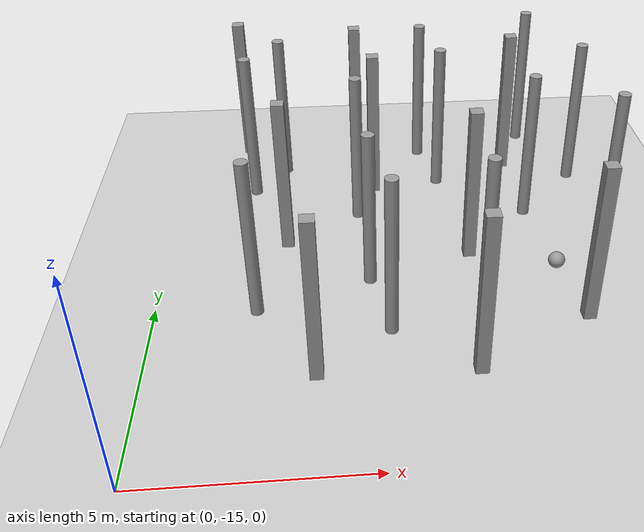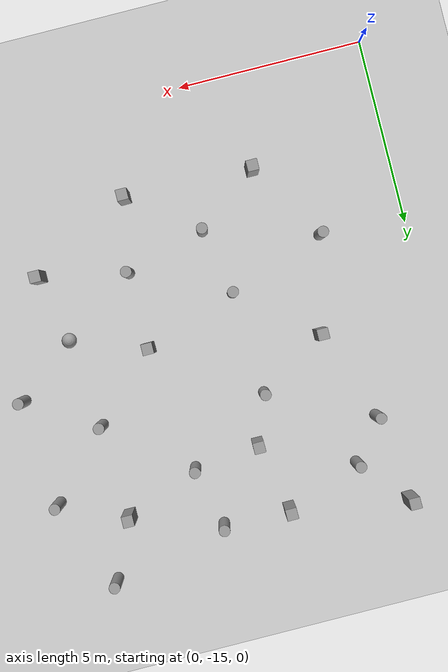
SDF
<sdf version="1.6">
 <world name="default">
  <model name="ground_plane">
   <static>1</static>
   <link name="link">
    <collision name="collision">
     <geometry><plane><normal>0 0 1</normal><size>100 100</size></plane></geometry>
    </collision>
    <visual name="visual">
     <cast_shadows>0</cast_shadows>
     <geometry><plane><normal>0 0 1</normal><size>100 100</size></plane></geometry>
     <material>
      <script><uri>file://media/materials/scripts/gazebo.material</uri><name>Gazebo/Gray</name></script>
     </material>
    </visual>
   </link>
  </model>
  <model name="unit_sphere">
   <link name="link">
    <inertial>
     <mass>1</mass>
     <inertia><ixx>0.1</ixx><ixy>0</ixy><ixz>0</ixz><iyy>0.1</iyy><iyz>0</iyz><izz>0.1</izz></inertia>
    </inertial>
    <gravity>0</gravity>
    <visual name="visual">
     <geometry><sphere><radius>0.203941</radius></sphere></geometry>
     <material>
      <script><name>Gazebo/Grey</name><uri>file://media/materials/scripts/gazebo.material</uri></script>
      <shader type="pixel"><normal_map>__default__</normal_map></shader>
     </material>
    </visual>
    <collision name="collision">
     <geometry><sphere><radius>0.203941</radius></sphere></geometry>
     <surface>
      <friction>
       <ode><mu>1</mu><mu2>1</mu2><fdir1>0 0 0</fdir1><slip1>0</slip1><slip2>0</slip2></ode>
       <torsional>
        <coefficient>1</coefficient>
        <patch_radius>0</patch_radius>
        <surface_radius>0</surface_radius>
        <use_patch_radius>1</use_patch_radius>
        <ode><slip>0</slip></ode>
       </torsional>
      </friction>
      <bounce><restitution_coefficient>0</restitution_coefficient><threshold>1e+06</threshold></bounce>
      <contact>
       <collide_without_contact>0</collide_without_contact>
       <collide_without_contact_bitmask>1</collide_without_contact_bitmask>
       <collide_bitmask>1</collide_bitmask>
       <ode>
        <soft_cfm>0</soft_cfm>
        <soft_erp>0.2</soft_erp>
        <kp>1e+13</kp>
        <kd>1</kd>
        <max_vel>0.01</max_vel>
        <min_depth>0</min_depth>
       </ode>
       <bullet>
        <split_impulse>1</split_impulse>
        <split_impulse_penetration_threshold>-0.01</split_impulse_penetration_threshold>
        <soft_cfm>0</soft_cfm>
        <soft_erp>0.2</soft_erp>
        <kp>1e+13</kp>
        <kd>1</kd>
       </bullet>
      </contact>
     </surface>
    </collision>
   </link>
   <static>0</static>
   <pose>9.54607 -9.14462 0.203941 0 -0 0</pose>
  </model>
  <model name="unit_box_clone_2">
   <link name="link">
    <inertial>
     <mass>1000</mass>
     <inertia><ixx>166.667</ixx><ixy>0</ixy><ixz>0</ixz><iyy>166.667</iyy><iyz>0</iyz><izz>166.667</izz></inertia>
    </inertial>
    <visual name="visual">
     <geometry><box><size>0.3 0.3 4</size></box></geometry>
     <material>
      <script><name>Gazebo/Grey</name><uri>file://media/materials/scripts/gazebo.material</uri></script>
      <shader type="vertex"><normal_map>__default__</normal_map></shader>
      <ambient>0.3 0.3 0.3 1</ambient>
      <diffuse>0.7 0.7 0.7 1</diffuse>
      <specular>0.01 0.01 0.01 1</specular>
      <emissive>0 0 0 1</emissive>
     </material>
    </visual>
    <collision name="collision">
     <geometry><box><size>0.3 0.3 4</size></box></geometry>
     <surface>
      <friction>
       <ode><mu>1</mu><mu2>1</mu2><fdir1>0 0 0</fdir1><slip1>0</slip1><slip2>0</slip2></ode>
       <torsional>
        <coefficient>1</coefficient>
        <patch_radius>0</patch_radius>
        <surface_radius>0</surface_radius>
        <use_patch_radius>1</use_patch_radius>
        <ode><slip>0</slip></ode>
       </torsional>
      </friction>
      <bounce><restitution_coefficient>0</restitution_coefficient><threshold>1e+06</threshold></bounce>
      <contact>
       <collide_without_contact>0</collide_without_contact>
       <collide_without_contact_bitmask>1</collide_without_contact_bitmask>
       <collide_bitmask>1</collide_bitmask>
       <ode>
        <soft_cfm>0</soft_cfm>
        <soft_erp>0.2</soft_erp>
        <kp>1e+13</kp>
        <kd>1</kd>
        <max_vel>0.01</max_vel>
        <min_depth>0</min_depth>
       </ode>
       <bullet>
        <split_impulse>1</split_impulse>
        <split_impulse_penetration_threshold>-0.01</split_impulse_penetration_threshold>
        <soft_cfm>0</soft_cfm>
        <soft_erp>0.2</soft_erp>
        <kp>1e+13</kp>
        <kd>1</kd>
       </bullet>
      </contact>
     </surface>
    </collision>
   </link>
   <static>0</static>
   <pose>4.92525 -3.34789 2 -2e-06 -5e-06 0.005092</pose>
  </model>
  <model name="unit_box_clone_7">
   <link name="link">
    <inertial>
     <mass>1000</mass>
     <inertia><ixx>166.667</ixx><ixy>0</ixy><ixz>0</ixz><iyy>166.667</iyy><iyz>0</iyz><izz>166.667</izz></inertia>
    </inertial>
    <visual name="visual">
     <geometry><box><size>0.3 0.3 4</size></box></geometry>
     <material>
      <script><name>Gazebo/Grey</name><uri>file://media/materials/scripts/gazebo.material</uri></script>
      <shader type="vertex"><normal_map>__default__</normal_map></shader>
      <ambient>0.3 0.3 0.3 1</ambient>
      <diffuse>0.7 0.7 0.7 1</diffuse>
      <specular>0.01 0.01 0.01 1</specular>
      <emissive>0 0 0 1</emissive>
     </material>
    </visual>
    <collision name="collision">
     <geometry><box><size>0.3 0.3 4</size></box></geometry>
     <surface>
      <friction>
       <ode><mu>1</mu><mu2>1</mu2><fdir1>0 0 0</fdir1><slip1>0</slip1><slip2>0</slip2></ode>
       <torsional>
        <coefficient>1</coefficient>
        <patch_radius>0</patch_radius>
        <surface_radius>0</surface_radius>
        <use_patch_radius>1</use_patch_radius>
        <ode><slip>0</slip></ode>
       </torsional>
      </friction>
      <bounce><restitution_coefficient>0</restitution_coefficient><threshold>1e+06</threshold></bounce>
      <contact>
       <collide_without_contact>0</collide_without_contact>
       <collide_without_contact_bitmask>1</collide_without_contact_bitmask>
       <collide_bitmask>1</collide_bitmask>
       <ode>
        <soft_cfm>0</soft_cfm>
        <soft_erp>0.2</soft_erp>
        <kp>1e+13</kp>
        <kd>1</kd>
        <max_vel>0.01</max_vel>
        <min_depth>0</min_depth>
       </ode>
       <bullet>
        <split_impulse>1</split_impulse>
        <split_impulse_penetration_threshold>-0.01</split_impulse_penetration_threshold>
        <soft_cfm>0</soft_cfm>
        <soft_erp>0.2</soft_erp>
        <kp>1e+13</kp>
        <kd>1</kd>
       </bullet>
      </contact>
     </surface>
    </collision>
   </link>
   <static>0</static>
   <pose>9.86056 -10.963 2 8e-06 7e-06 -0.005605</pose>
  </model>
  <model name="unit_cylinder_clone_0">
   <link name="link">
    <inertial>
     <mass>1000</mass>
     <inertia><ixx>145.833</ixx><ixy>0</ixy><ixz>0</ixz><iyy>145.833</iyy><iyz>0</iyz><izz>125</izz></inertia>
    </inertial>
    <visual name="visual">
     <geometry><cylinder><radius>0.15</radius><length>4</length></cylinder></geometry>
     <material>
      <script><name>Gazebo/Grey</name><uri>file://media/materials/scripts/gazebo.material</uri></script>
      <shader type="vertex"><normal_map>__default__</normal_map></shader>
      <ambient>0.3 0.3 0.3 1</ambient>
      <diffuse>0.7 0.7 0.7 1</diffuse>
      <specular>0.01 0.01 0.01 1</specular>
      <emissive>0 0 0 1</emissive>
     </material>
    </visual>
    <collision name="collision">
     <geometry><cylinder><radius>0.15</radius><length>4</length></cylinder></geometry>
     <surface>
      <friction>
       <ode><mu>1</mu><mu2>1</mu2><fdir1>0 0 0</fdir1><slip1>0</slip1><slip2>0</slip2></ode>
       <torsional>
        <coefficient>1</coefficient>
        <patch_radius>0</patch_radius>
        <surface_radius>0</surface_radius>
        <use_patch_radius>1</use_patch_radius>
        <ode><slip>0</slip></ode>
       </torsional>
      </friction>
      <bounce><restitution_coefficient>0</restitution_coefficient><threshold>1e+06</threshold></bounce>
      <contact>
       <collide_without_contact>0</collide_without_contact>
       <collide_without_contact_bitmask>1</collide_without_contact_bitmask>
       <collide_bitmask>1</collide_bitmask>
       <ode>
        <soft_cfm>0</soft_cfm>
        <soft_erp>0.2</soft_erp>
        <kp>1e+13</kp>
        <kd>1</kd>
        <max_vel>0.01</max_vel>
        <min_depth>0</min_depth>
       </ode>
       <bullet>
        <split_impulse>1</split_impulse>
        <split_impulse_penetration_threshold>-0.01</split_impulse_penetration_threshold>
        <soft_cfm>0</soft_cfm>
        <soft_erp>0.2</soft_erp>
        <kp>1e+13</kp>
        <kd>1</kd>
       </bullet>
      </contact>
     </surface>
    </collision>
   </link>
   <static>0</static>
   <pose>6.72172 -3.36376 1.99998 -2e-06 -0 -0.168624</pose>
  </model>
  <model name="unit_cylinder_clone_1">
   <link name="link">
    <inertial>
     <mass>1000</mass>
     <inertia><ixx>145.833</ixx><ixy>0</ixy><ixz>0</ixz><iyy>145.833</iyy><iyz>0</iyz><izz>125</izz></inertia>
    </inertial>
    <visual name="visual">
     <geometry><cylinder><radius>0.15</radius><length>4</length></cylinder></geometry>
     <material>
      <script><name>Gazebo/Grey</name><uri>file://media/materials/scripts/gazebo.material</uri></script>
      <shader type="vertex"><normal_map>__default__</normal_map></shader>
      <ambient>0.3 0.3 0.3 1</ambient>
      <diffuse>0.7 0.7 0.7 1</diffuse>
      <specular>0.01 0.01 0.01 1</specular>
      <emissive>0 0 0 1</emissive>
     </material>
    </visual>
    <collision name="collision">
     <geometry><cylinder><radius>0.15</radius><length>4</length></cylinder></geometry>
     <surface>
      <friction>
       <ode><mu>1</mu><mu2>1</mu2><fdir1>0 0 0</fdir1><slip1>0</slip1><slip2>0</slip2></ode>
       <torsional>
        <coefficient>1</coefficient>
        <patch_radius>0</patch_radius>
        <surface_radius>0</surface_radius>
        <use_patch_radius>1</use_patch_radius>
        <ode><slip>0</slip></ode>
       </torsional>
      </friction>
      <bounce><restitution_coefficient>0</restitution_coefficient><threshold>1e+06</threshold></bounce>
      <contact>
       <collide_without_contact>0</collide_without_contact>
       <collide_without_contact_bitmask>1</collide_without_contact_bitmask>
       <collide_bitmask>1</collide_bitmask>
       <ode>
        <soft_cfm>0</soft_cfm>
        <soft_erp>0.2</soft_erp>
        <kp>1e+13</kp>
        <kd>1</kd>
        <max_vel>0.01</max_vel>
        <min_depth>0</min_depth>
       </ode>
       <bullet>
        <split_impulse>1</split_impulse>
        <split_impulse_penetration_threshold>-0.01</split_impulse_penetration_threshold>
        <soft_cfm>0</soft_cfm>
        <soft_erp>0.2</soft_erp>
        <kp>1e+13</kp>
        <kd>1</kd>
       </bullet>
      </contact>
     </surface>
    </collision>
   </link>
   <static>0</static>
   <pose>2.06819 -5.17629 1.99998 -2e-06 -0 -0.157646</pose>
  </model>
  <model name="unit_cylinder_clone_2">
   <link name="link">
    <inertial>
     <mass>1000</mass>
     <inertia><ixx>145.833</ixx><ixy>0</ixy><ixz>0</ixz><iyy>145.833</iyy><iyz>0</iyz><izz>125</izz></inertia>
    </inertial>
    <visual name="visual">
     <geometry><cylinder><radius>0.15</radius><length>4</length></cylinder></geometry>
     <material>
      <script><name>Gazebo/Grey</name><uri>file://media/materials/scripts/gazebo.material</uri></script>
      <shader type="vertex"><normal_map>__default__</normal_map></shader>
      <ambient>0.3 0.3 0.3 1</ambient>
      <diffuse>0.7 0.7 0.7 1</diffuse>
      <specular>0.01 0.01 0.01 1</specular>
      <emissive>0 0 0 1</emissive>
     </material>
    </visual>
    <collision name="collision">
     <geometry><cylinder><radius>0.15</radius><length>4</length></cylinder></geometry>
     <surface>
      <friction>
       <ode><mu>1</mu><mu2>1</mu2><fdir1>0 0 0</fdir1><slip1>0</slip1><slip2>0</slip2></ode>
       <torsional>
        <coefficient>1</coefficient>
        <patch_radius>0</patch_radius>
        <surface_radius>0</surface_radius>
        <use_patch_radius>1</use_patch_radius>
        <ode><slip>0</slip></ode>
       </torsional>
      </friction>
      <bounce><restitution_coefficient>0</restitution_coefficient><threshold>1e+06</threshold></bounce>
      <contact>
       <collide_without_contact>0</collide_without_contact>
       <collide_without_contact_bitmask>1</collide_without_contact_bitmask>
       <collide_bitmask>1</collide_bitmask>
       <ode>
        <soft_cfm>0</soft_cfm>
        <soft_erp>0.2</soft_erp>
        <kp>1e+13</kp>
        <kd>1</kd>
        <max_vel>0.01</max_vel>
        <min_depth>0</min_depth>
       </ode>
       <bullet>
        <split_impulse>1</split_impulse>
        <split_impulse_penetration_threshold>-0.01</split_impulse_penetration_threshold>
        <soft_cfm>0</soft_cfm>
        <soft_erp>0.2</soft_erp>
        <kp>1e+13</kp>
        <kd>1</kd>
       </bullet>
      </contact>
     </surface>
    </collision>
   </link>
   <static>0</static>
   <pose>4.97554 -9.30355 1.99998 -1e-06 -1e-06 -0.171232</pose>
  </model>
  <model name="unit_cylinder_clone_0_clone">
   <link name="link">
    <inertial>
     <mass>1000</mass>
     <inertia><ixx>145.833</ixx><ixy>0</ixy><ixz>0</ixz><iyy>145.833</iyy><iyz>0</iyz><izz>125</izz></inertia>
    </inertial>
    <visual name="visual">
     <geometry><cylinder><radius>0.15</radius><length>4</length></cylinder></geometry>
     <material>
      <script><name>Gazebo/Grey</name><uri>file://media/materials/scripts/gazebo.material</uri></script>
      <shader type="vertex"><normal_map>__default__</normal_map></shader>
      <ambient>0.3 0.3 0.3 1</ambient>
      <diffuse>0.7 0.7 0.7 1</diffuse>
      <specular>0.01 0.01 0.01 1</specular>
      <emissive>0 0 0 1</emissive>
     </material>
    </visual>
    <collision name="collision">
     <geometry><cylinder><radius>0.15</radius><length>4</length></cylinder></geometry>
     <surface>
      <friction>
       <ode><mu>1</mu><mu2>1</mu2><fdir1>0 0 0</fdir1><slip1>0</slip1><slip2>0</slip2></ode>
       <torsional>
        <coefficient>1</coefficient>
        <patch_radius>0</patch_radius>
        <surface_radius>0</surface_radius>
        <use_patch_radius>1</use_patch_radius>
        <ode><slip>0</slip></ode>
       </torsional>
      </friction>
      <bounce><restitution_coefficient>0</restitution_coefficient><threshold>1e+06</threshold></bounce>
      <contact>
       <collide_without_contact>0</collide_without_contact>
       <collide_without_contact_bitmask>1</collide_without_contact_bitmask>
       <collide_bitmask>1</collide_bitmask>
       <ode>
        <soft_cfm>0</soft_cfm>
        <soft_erp>0.2</soft_erp>
        <kp>1e+13</kp>
        <kd>1</kd>
        <max_vel>0.01</max_vel>
        <min_depth>0</min_depth>
       </ode>
       <bullet>
        <split_impulse>1</split_impulse>
        <split_impulse_penetration_threshold>-0.01</split_impulse_penetration_threshold>
        <soft_cfm>0</soft_cfm>
        <soft_erp>0.2</soft_erp>
        <kp>1e+13</kp>
        <kd>1</kd>
       </bullet>
      </contact>
     </surface>
    </collision>
   </link>
   <static>0</static>
   <pose>10.848 -4.98975 1.99998 -1e-06 1e-06 -0.151734</pose>
  </model>
  <model name="unit_cylinder_clone_1_clone_9">
   <link name="link">
    <inertial>
     <mass>1000</mass>
     <inertia><ixx>145.833</ixx><ixy>0</ixy><ixz>0</ixz><iyy>145.833</iyy><iyz>0</iyz><izz>125</izz></inertia>
    </inertial>
    <visual name="visual">
     <geometry><cylinder><radius>0.15</radius><length>4</length></cylinder></geometry>
     <material>
      <script><name>Gazebo/Grey</name><uri>file://media/materials/scripts/gazebo.material</uri></script>
      <shader type="vertex"><normal_map>__default__</normal_map></shader>
      <ambient>0.3 0.3 0.3 1</ambient>
      <diffuse>0.7 0.7 0.7 1</diffuse>
      <specular>0.01 0.01 0.01 1</specular>
      <emissive>0 0 0 1</emissive>
     </material>
    </visual>
    <collision name="collision">
     <geometry><cylinder><radius>0.15</radius><length>4</length></cylinder></geometry>
     <surface>
      <friction>
       <ode><mu>1</mu><mu2>1</mu2><fdir1>0 0 0</fdir1><slip1>0</slip1><slip2>0</slip2></ode>
       <torsional>
        <coefficient>1</coefficient>
        <patch_radius>0</patch_radius>
        <surface_radius>0</surface_radius>
        <use_patch_radius>1</use_patch_radius>
        <ode><slip>0</slip></ode>
       </torsional>
      </friction>
      <bounce><restitution_coefficient>0</restitution_coefficient><threshold>1e+06</threshold></bounce>
      <contact>
       <collide_without_contact>0</collide_without_contact>
       <collide_without_contact_bitmask>1</collide_without_contact_bitmask>
       <collide_bitmask>1</collide_bitmask>
       <ode>
        <soft_cfm>0</soft_cfm>
        <soft_erp>0.2</soft_erp>
        <kp>1e+13</kp>
        <kd>1</kd>
        <max_vel>0.01</max_vel>
        <min_depth>0</min_depth>
       </ode>
       <bullet>
        <split_impulse>1</split_impulse>
        <split_impulse_penetration_threshold>-0.01</split_impulse_penetration_threshold>
        <soft_cfm>0</soft_cfm>
        <soft_erp>0.2</soft_erp>
        <kp>1e+13</kp>
        <kd>1</kd>
       </bullet>
      </contact>
     </surface>
    </collision>
   </link>
   <static>0</static>
   <pose>11.0898 -7.86776 1.99995 -0.000273 -6e-06 -0.815493</pose>
  </model>
  <model name="unit_cylinder_clone_1_clone_23">
   <link name="link">
    <inertial>
     <mass>1000</mass>
     <inertia><ixx>145.833</ixx><ixy>0</ixy><ixz>0</ixz><iyy>145.833</iyy><iyz>0</iyz><izz>125</izz></inertia>
    </inertial>
    <visual name="visual">
     <geometry><cylinder><radius>0.15</radius><length>4</length></cylinder></geometry>
     <material>
      <script><name>Gazebo/Grey</name><uri>file://media/materials/scripts/gazebo.material</uri></script>
      <shader type="vertex"><normal_map>__default__</normal_map></shader>
      <ambient>0.3 0.3 0.3 1</ambient>
      <diffuse>0.7 0.7 0.7 1</diffuse>
      <specular>0.01 0.01 0.01 1</specular>
      <emissive>0 0 0 1</emissive>
     </material>
    </visual>
    <collision name="collision">
     <geometry><cylinder><radius>0.15</radius><length>4</length></cylinder></geometry>
     <surface>
      <friction>
       <ode><mu>1</mu><mu2>1</mu2><fdir1>0 0 0</fdir1><slip1>0</slip1><slip2>0</slip2></ode>
       <torsional>
        <coefficient>1</coefficient>
        <patch_radius>0</patch_radius>
        <surface_radius>0</surface_radius>
        <use_patch_radius>1</use_patch_radius>
        <ode><slip>0</slip></ode>
       </torsional>
      </friction>
      <bounce><restitution_coefficient>0</restitution_coefficient><threshold>1e+06</threshold></bounce>
      <contact>
       <collide_without_contact>0</collide_without_contact>
       <collide_without_contact_bitmask>1</collide_without_contact_bitmask>
       <collide_bitmask>1</collide_bitmask>
       <ode>
        <soft_cfm>0</soft_cfm>
        <soft_erp>0.2</soft_erp>
        <kp>1e+13</kp>
        <kd>1</kd>
        <max_vel>0.01</max_vel>
        <min_depth>0</min_depth>
       </ode>
       <bullet>
        <split_impulse>1</split_impulse>
        <split_impulse_penetration_threshold>-0.01</split_impulse_penetration_threshold>
        <soft_cfm>0</soft_cfm>
        <soft_erp>0.2</soft_erp>
        <kp>1e+13</kp>
        <kd>1</kd>
       </bullet>
      </contact>
     </surface>
    </collision>
   </link>
   <static>0</static>
   <pose>7.09425 -5.00748 1.99998 -1e-06 1e-06 -0.327486</pose>
  </model>
  <model name="unit_cylinder_clone_1_clone_24">
   <link name="link">
    <inertial>
     <mass>1000</mass>
     <inertia><ixx>145.833</ixx><ixy>0</ixy><ixz>0</ixz><iyy>145.833</iyy><iyz>0</iyz><izz>125</izz></inertia>
    </inertial>
    <visual name="visual">
     <geometry><cylinder><radius>0.15</radius><length>4</length></cylinder></geometry>
     <material>
      <script><name>Gazebo/Grey</name><uri>file://media/materials/scripts/gazebo.material</uri></script>
      <shader type="vertex"><normal_map>__default__</normal_map></shader>
      <ambient>0.3 0.3 0.3 1</ambient>
      <diffuse>0.7 0.7 0.7 1</diffuse>
      <specular>0.01 0.01 0.01 1</specular>
      <emissive>0 0 0 1</emissive>
     </material>
    </visual>
    <collision name="collision">
     <geometry><cylinder><radius>0.15</radius><length>4</length></cylinder></geometry>
     <surface>
      <friction>
       <ode><mu>1</mu><mu2>1</mu2><fdir1>0 0 0</fdir1><slip1>0</slip1><slip2>0</slip2></ode>
       <torsional>
        <coefficient>1</coefficient>
        <patch_radius>0</patch_radius>
        <surface_radius>0</surface_radius>
        <use_patch_radius>1</use_patch_radius>
        <ode><slip>0</slip></ode>
       </torsional>
      </friction>
      <bounce><restitution_coefficient>0</restitution_coefficient><threshold>1e+06</threshold></bounce>
      <contact>
       <collide_without_contact>0</collide_without_contact>
       <collide_without_contact_bitmask>1</collide_without_contact_bitmask>
       <collide_bitmask>1</collide_bitmask>
       <ode>
        <soft_cfm>0</soft_cfm>
        <soft_erp>0.2</soft_erp>
        <kp>1e+13</kp>
        <kd>1</kd>
        <max_vel>0.01</max_vel>
        <min_depth>0</min_depth>
       </ode>
       <bullet>
        <split_impulse>1</split_impulse>
        <split_impulse_penetration_threshold>-0.01</split_impulse_penetration_threshold>
        <soft_cfm>0</soft_cfm>
        <soft_erp>0.2</soft_erp>
        <kp>1e+13</kp>
        <kd>1</kd>
       </bullet>
      </contact>
     </surface>
    </collision>
   </link>
   <static>0</static>
   <pose>9.22627 -6.73044 1.99995 -0.000273 -7e-06 -0.81849</pose>
  </model>
  <model name="unit_cylinder_clone_1_clone_29">
   <link name="link">
    <inertial>
     <mass>1000</mass>
     <inertia><ixx>145.833</ixx><ixy>0</ixy><ixz>0</ixz><iyy>145.833</iyy><iyz>0</iyz><izz>125</izz></inertia>
    </inertial>
    <visual name="visual">
     <geometry><cylinder><radius>0.15</radius><length>4</length></cylinder></geometry>
     <material>
      <script><name>Gazebo/Grey</name><uri>file://media/materials/scripts/gazebo.material</uri></script>
      <shader type="vertex"><normal_map>__default__</normal_map></shader>
      <ambient>0.3 0.3 0.3 1</ambient>
      <diffuse>0.7 0.7 0.7 1</diffuse>
      <specular>0.01 0.01 0.01 1</specular>
      <emissive>0 0 0 1</emissive>
     </material>
    </visual>
    <collision name="collision">
     <geometry><cylinder><radius>0.15</radius><length>4</length></cylinder></geometry>
     <surface>
      <friction>
       <ode><mu>1</mu><mu2>1</mu2><fdir1>0 0 0</fdir1><slip1>0</slip1><slip2>0</slip2></ode>
       <torsional>
        <coefficient>1</coefficient>
        <patch_radius>0</patch_radius>
        <surface_radius>0</surface_radius>
        <use_patch_radius>1</use_patch_radius>
        <ode><slip>0</slip></ode>
       </torsional>
      </friction>
      <bounce><restitution_coefficient>0</restitution_coefficient><threshold>1e+06</threshold></bounce>
      <contact>
       <collide_without_contact>0</collide_without_contact>
       <collide_without_contact_bitmask>1</collide_without_contact_bitmask>
       <collide_bitmask>1</collide_bitmask>
       <ode>
        <soft_cfm>0</soft_cfm>
        <soft_erp>0.2</soft_erp>
        <kp>1e+13</kp>
        <kd>1</kd>
        <max_vel>0.01</max_vel>
        <min_depth>0</min_depth>
       </ode>
       <bullet>
        <split_impulse>1</split_impulse>
        <split_impulse_penetration_threshold>-0.01</split_impulse_penetration_threshold>
        <soft_cfm>0</soft_cfm>
        <soft_erp>0.2</soft_erp>
        <kp>1e+13</kp>
        <kd>1</kd>
       </bullet>
      </contact>
     </surface>
    </collision>
   </link>
   <static>0</static>
   <pose>9.84942 -2.63177 1.99995 -0.000273 -6e-06 -0.815328</pose>
  </model>
  <model name="unit_cylinder_clone_1_clone_7_clone_4">
   <link name="link">
    <inertial>
     <mass>1000</mass>
     <inertia><ixx>145.833</ixx><ixy>0</ixy><ixz>0</ixz><iyy>145.833</iyy><iyz>0</iyz><izz>125</izz></inertia>
    </inertial>
    <visual name="visual">
     <geometry><cylinder><radius>0.15</radius><length>4</length></cylinder></geometry>
     <material>
      <script><name>Gazebo/Grey</name><uri>file://media/materials/scripts/gazebo.material</uri></script>
      <shader type="vertex"><normal_map>__default__</normal_map></shader>
      <ambient>0.3 0.3 0.3 1</ambient>
      <diffuse>0.7 0.7 0.7 1</diffuse>
      <specular>0.01 0.01 0.01 1</specular>
      <emissive>0 0 0 1</emissive>
     </material>
    </visual>
    <collision name="collision">
     <geometry><cylinder><radius>0.15</radius><length>4</length></cylinder></geometry>
     <surface>
      <friction>
       <ode><mu>1</mu><mu2>1</mu2><fdir1>0 0 0</fdir1><slip1>0</slip1><slip2>0</slip2></ode>
       <torsional>
        <coefficient>1</coefficient>
        <patch_radius>0</patch_radius>
        <surface_radius>0</surface_radius>
        <use_patch_radius>1</use_patch_radius>
        <ode><slip>0</slip></ode>
       </torsional>
      </friction>
      <bounce><restitution_coefficient>0</restitution_coefficient><threshold>1e+06</threshold></bounce>
      <contact>
       <collide_without_contact>0</collide_without_contact>
       <collide_without_contact_bitmask>1</collide_without_contact_bitmask>
       <collide_bitmask>1</collide_bitmask>
       <ode>
        <soft_cfm>0</soft_cfm>
        <soft_erp>0.2</soft_erp>
        <kp>1e+13</kp>
        <kd>1</kd>
        <max_vel>0.01</max_vel>
        <min_depth>0</min_depth>
       </ode>
       <bullet>
        <split_impulse>1</split_impulse>
        <split_impulse_penetration_threshold>-0.01</split_impulse_penetration_threshold>
        <soft_cfm>0</soft_cfm>
        <soft_erp>0.2</soft_erp>
        <kp>1e+13</kp>
        <kd>1</kd>
       </bullet>
      </contact>
     </surface>
    </collision>
   </link>
   <static>0</static>
   <pose>2.32783 -10.2393 1.99995 -0.000273 -6e-06 -0.815339</pose>
  </model>
  <model name="unit_cylinder_clone_1_clone_7_clone_9">
   <link name="link">
    <inertial>
     <mass>1000</mass>
     <inertia><ixx>145.833</ixx><ixy>0</ixy><ixz>0</ixz><iyy>145.833</iyy><iyz>0</iyz><izz>125</izz></inertia>
    </inertial>
    <visual name="visual">
     <geometry><cylinder><radius>0.15</radius><length>4</length></cylinder></geometry>
     <material>
      <script><name>Gazebo/Grey</name><uri>file://media/materials/scripts/gazebo.material</uri></script>
      <shader type="vertex"><normal_map>__default__</normal_map></shader>
      <ambient>0.3 0.3 0.3 1</ambient>
      <diffuse>0.7 0.7 0.7 1</diffuse>
      <specular>0.01 0.01 0.01 1</specular>
      <emissive>0 0 0 1</emissive>
     </material>
    </visual>
    <collision name="collision">
     <geometry><cylinder><radius>0.15</radius><length>4</length></cylinder></geometry>
     <surface>
      <friction>
       <ode><mu>1</mu><mu2>1</mu2><fdir1>0 0 0</fdir1><slip1>0</slip1><slip2>0</slip2></ode>
       <torsional>
        <coefficient>1</coefficient>
        <patch_radius>0</patch_radius>
        <surface_radius>0</surface_radius>
        <use_patch_radius>1</use_patch_radius>
        <ode><slip>0</slip></ode>
       </torsional>
      </friction>
      <bounce><restitution_coefficient>0</restitution_coefficient><threshold>1e+06</threshold></bounce>
      <contact>
       <collide_without_contact>0</collide_without_contact>
       <collide_without_contact_bitmask>1</collide_without_contact_bitmask>
       <collide_bitmask>1</collide_bitmask>
       <ode>
        <soft_cfm>0</soft_cfm>
        <soft_erp>0.2</soft_erp>
        <kp>1e+13</kp>
        <kd>1</kd>
        <max_vel>0.01</max_vel>
        <min_depth>0</min_depth>
       </ode>
       <bullet>
        <split_impulse>1</split_impulse>
        <split_impulse_penetration_threshold>-0.01</split_impulse_penetration_threshold>
        <soft_cfm>0</soft_cfm>
        <soft_erp>0.2</soft_erp>
        <kp>1e+13</kp>
        <kd>1</kd>
       </bullet>
      </contact>
     </surface>
    </collision>
   </link>
   <static>0</static>
   <pose>2.88483 -4.08484 1.99995 -0.000273 -5e-06 -0.810507</pose>
  </model>
  <model name="unit_cylinder_clone_clone">
   <link name="link">
    <inertial>
     <mass>1000</mass>
     <inertia><ixx>145.833</ixx><ixy>0</ixy><ixz>0</ixz><iyy>145.833</iyy><iyz>0</iyz><izz>125</izz></inertia>
    </inertial>
    <visual name="visual">
     <geometry><cylinder><radius>0.15</radius><length>4</length></cylinder></geometry>
     <material>
      <script><name>Gazebo/Grey</name><uri>file://media/materials/scripts/gazebo.material</uri></script>
      <shader type="vertex"><normal_map>__default__</normal_map></shader>
      <ambient>0.3 0.3 0.3 1</ambient>
      <diffuse>0.7 0.7 0.7 1</diffuse>
      <specular>0.01 0.01 0.01 1</specular>
      <emissive>0 0 0 1</emissive>
     </material>
    </visual>
    <collision name="collision">
     <geometry><cylinder><radius>0.15</radius><length>4</length></cylinder></geometry>
     <surface>
      <friction>
       <ode><mu>1</mu><mu2>1</mu2><fdir1>0 0 0</fdir1><slip1>0</slip1><slip2>0</slip2></ode>
       <torsional>
        <coefficient>1</coefficient>
        <patch_radius>0</patch_radius>
        <surface_radius>0</surface_radius>
        <use_patch_radius>1</use_patch_radius>
        <ode><slip>0</slip></ode>
       </torsional>
      </friction>
      <bounce><restitution_coefficient>0</restitution_coefficient><threshold>1e+06</threshold></bounce>
      <contact>
       <collide_without_contact>0</collide_without_contact>
       <collide_without_contact_bitmask>1</collide_without_contact_bitmask>
       <collide_bitmask>1</collide_bitmask>
       <ode>
        <soft_cfm>0</soft_cfm>
        <soft_erp>0.2</soft_erp>
        <kp>1e+13</kp>
        <kd>1</kd>
        <max_vel>0.01</max_vel>
        <min_depth>0</min_depth>
       </ode>
       <bullet>
        <split_impulse>1</split_impulse>
        <split_impulse_penetration_threshold>-0.01</split_impulse_penetration_threshold>
        <soft_cfm>0</soft_cfm>
        <soft_erp>0.2</soft_erp>
        <kp>1e+13</kp>
        <kd>1</kd>
       </bullet>
      </contact>
     </surface>
    </collision>
   </link>
   <static>0</static>
   <pose>5.35034 -11.105 1.99998 -1e-06 1e-06 -0.159149</pose>
  </model>
  <model name="unit_cylinder_clone_clone_0">
   <link name="link">
    <inertial>
     <mass>1000</mass>
     <inertia><ixx>145.833</ixx><ixy>0</ixy><ixz>0</ixz><iyy>145.833</iyy><iyz>0</iyz><izz>125</izz></inertia>
    </inertial>
    <visual name="visual">
     <geometry><cylinder><radius>0.15</radius><length>4</length></cylinder></geometry>
     <material>
      <script><name>Gazebo/Grey</name><uri>file://media/materials/scripts/gazebo.material</uri></script>
      <shader type="vertex"><normal_map>__default__</normal_map></shader>
      <ambient>0.3 0.3 0.3 1</ambient>
      <diffuse>0.7 0.7 0.7 1</diffuse>
      <specular>0.01 0.01 0.01 1</specular>
      <emissive>0 0 0 1</emissive>
     </material>
    </visual>
    <collision name="collision">
     <geometry><cylinder><radius>0.15</radius><length>4</length></cylinder></geometry>
     <surface>
      <friction>
       <ode><mu>1</mu><mu2>1</mu2><fdir1>0 0 0</fdir1><slip1>0</slip1><slip2>0</slip2></ode>
       <torsional>
        <coefficient>1</coefficient>
        <patch_radius>0</patch_radius>
        <surface_radius>0</surface_radius>
        <use_patch_radius>1</use_patch_radius>
        <ode><slip>0</slip></ode>
       </torsional>
      </friction>
      <bounce><restitution_coefficient>0</restitution_coefficient><threshold>1e+06</threshold></bounce>
      <contact>
       <collide_without_contact>0</collide_without_contact>
       <collide_without_contact_bitmask>1</collide_without_contact_bitmask>
       <collide_bitmask>1</collide_bitmask>
       <ode>
        <soft_cfm>0</soft_cfm>
        <soft_erp>0.2</soft_erp>
        <kp>1e+13</kp>
        <kd>1</kd>
        <max_vel>0.01</max_vel>
        <min_depth>0</min_depth>
       </ode>
       <bullet>
        <split_impulse>1</split_impulse>
        <split_impulse_penetration_threshold>-0.01</split_impulse_penetration_threshold>
        <soft_cfm>0</soft_cfm>
        <soft_erp>0.2</soft_erp>
        <kp>1e+13</kp>
        <kd>1</kd>
       </bullet>
      </contact>
     </surface>
    </collision>
   </link>
   <static>0</static>
   <pose>7.53538 -10.4996 1.99998 -2e-06 -1e-06 -0.164286</pose>
  </model>
  <model name="unit_cylinder_clone_clone_1">
   <link name="link">
    <inertial>
     <mass>1000</mass>
     <inertia><ixx>145.833</ixx><ixy>0</ixy><ixz>0</ixz><iyy>145.833</iyy><iyz>0</iyz><izz>125</izz></inertia>
    </inertial>
    <visual name="visual">
     <geometry><cylinder><radius>0.15</radius><length>4</length></cylinder></geometry>
     <material>
      <script><name>Gazebo/Grey</name><uri>file://media/materials/scripts/gazebo.material</uri></script>
      <shader type="vertex"><normal_map>__default__</normal_map></shader>
      <ambient>0.3 0.3 0.3 1</ambient>
      <diffuse>0.7 0.7 0.7 1</diffuse>
      <specular>0.01 0.01 0.01 1</specular>
      <emissive>0 0 0 1</emissive>
     </material>
    </visual>
    <collision name="collision">
     <geometry><cylinder><radius>0.15</radius><length>4</length></cylinder></geometry>
     <surface>
      <friction>
       <ode><mu>1</mu><mu2>1</mu2><fdir1>0 0 0</fdir1><slip1>0</slip1><slip2>0</slip2></ode>
       <torsional>
        <coefficient>1</coefficient>
        <patch_radius>0</patch_radius>
        <surface_radius>0</surface_radius>
        <use_patch_radius>1</use_patch_radius>
        <ode><slip>0</slip></ode>
       </torsional>
      </friction>
      <bounce><restitution_coefficient>0</restitution_coefficient><threshold>1e+06</threshold></bounce>
      <contact>
       <collide_without_contact>0</collide_without_contact>
       <collide_without_contact_bitmask>1</collide_without_contact_bitmask>
       <collide_bitmask>1</collide_bitmask>
       <ode>
        <soft_cfm>0</soft_cfm>
        <soft_erp>0.2</soft_erp>
        <kp>1e+13</kp>
        <kd>1</kd>
        <max_vel>0.01</max_vel>
        <min_depth>0</min_depth>
       </ode>
       <bullet>
        <split_impulse>1</split_impulse>
        <split_impulse_penetration_threshold>-0.01</split_impulse_penetration_threshold>
        <soft_cfm>0</soft_cfm>
        <soft_erp>0.2</soft_erp>
        <kp>1e+13</kp>
        <kd>1</kd>
       </bullet>
      </contact>
     </surface>
    </collision>
   </link>
   <static>0</static>
   <pose>4.81933 -6.50838 1.99998 -2e-06 1e-06 -0.172253</pose>
  </model>
  <model name="unit_box_clone_26_clone">
   <link name="link">
    <inertial>
     <mass>1000</mass>
     <inertia><ixx>166.667</ixx><ixy>0</ixy><ixz>0</ixz><iyy>166.667</iyy><iyz>0</iyz><izz>166.667</izz></inertia>
    </inertial>
    <visual name="visual">
     <geometry><box><size>0.3 0.3 4</size></box></geometry>
     <material>
      <script><name>Gazebo/Grey</name><uri>file://media/materials/scripts/gazebo.material</uri></script>
      <shader type="vertex"><normal_map>__default__</normal_map></shader>
      <ambient>0.3 0.3 0.3 1</ambient>
      <diffuse>0.7 0.7 0.7 1</diffuse>
      <specular>0.01 0.01 0.01 1</specular>
      <emissive>0 0 0 1</emissive>
     </material>
    </visual>
    <collision name="collision">
     <geometry><box><size>0.3 0.3 4</size></box></geometry>
     <surface>
      <friction>
       <ode><mu>1</mu><mu2>1</mu2><fdir1>0 0 0</fdir1><slip1>0</slip1><slip2>0</slip2></ode>
       <torsional>
        <coefficient>1</coefficient>
        <patch_radius>0</patch_radius>
        <surface_radius>0</surface_radius>
        <use_patch_radius>1</use_patch_radius>
        <ode><slip>0</slip></ode>
       </torsional>
      </friction>
      <bounce><restitution_coefficient>0</restitution_coefficient><threshold>1e+06</threshold></bounce>
      <contact>
       <collide_without_contact>0</collide_without_contact>
       <collide_without_contact_bitmask>1</collide_without_contact_bitmask>
       <collide_bitmask>1</collide_bitmask>
       <ode>
        <soft_cfm>0</soft_cfm>
        <soft_erp>0.2</soft_erp>
        <kp>1e+13</kp>
        <kd>1</kd>
        <max_vel>0.01</max_vel>
        <min_depth>0</min_depth>
       </ode>
       <bullet>
        <split_impulse>1</split_impulse>
        <split_impulse_penetration_threshold>-0.01</split_impulse_penetration_threshold>
        <soft_cfm>0</soft_cfm>
        <soft_erp>0.2</soft_erp>
        <kp>1e+13</kp>
        <kd>1</kd>
       </bullet>
      </contact>
     </surface>
    </collision>
   </link>
   <static>0</static>
   <pose>5.31859 -5.22755 2.00001 -5e-06 -3.3e-05 0.001303</pose>
  </model>
  <model name="unit_box_clone_26_clone_0">
   <link name="link">
    <inertial>
     <mass>1000</mass>
     <inertia><ixx>166.667</ixx><ixy>0</ixy><ixz>0</ixz><iyy>166.667</iyy><iyz>0</iyz><izz>166.667</izz></inertia>
    </inertial>
    <visual name="visual">
     <geometry><box><size>0.3 0.3 4</size></box></geometry>
     <material>
      <script><name>Gazebo/Grey</name><uri>file://media/materials/scripts/gazebo.material</uri></script>
      <shader type="vertex"><normal_map>__default__</normal_map></shader>
      <ambient>0.3 0.3 0.3 1</ambient>
      <diffuse>0.7 0.7 0.7 1</diffuse>
      <specular>0.01 0.01 0.01 1</specular>
      <emissive>0 0 0 1</emissive>
     </material>
    </visual>
    <collision name="collision">
     <geometry><box><size>0.3 0.3 4</size></box></geometry>
     <surface>
      <friction>
       <ode><mu>1</mu><mu2>1</mu2><fdir1>0 0 0</fdir1><slip1>0</slip1><slip2>0</slip2></ode>
       <torsional>
        <coefficient>1</coefficient>
        <patch_radius>0</patch_radius>
        <surface_radius>0</surface_radius>
        <use_patch_radius>1</use_patch_radius>
        <ode><slip>0</slip></ode>
       </torsional>
      </friction>
      <bounce><restitution_coefficient>0</restitution_coefficient><threshold>1e+06</threshold></bounce>
      <contact>
       <collide_without_contact>0</collide_without_contact>
       <collide_without_contact_bitmask>1</collide_without_contact_bitmask>
       <collide_bitmask>1</collide_bitmask>
       <ode>
        <soft_cfm>0</soft_cfm>
        <soft_erp>0.2</soft_erp>
        <kp>1e+13</kp>
        <kd>1</kd>
        <max_vel>0.01</max_vel>
        <min_depth>0</min_depth>
       </ode>
       <bullet>
        <split_impulse>1</split_impulse>
        <split_impulse_penetration_threshold>-0.01</split_impulse_penetration_threshold>
        <soft_cfm>0</soft_cfm>
        <soft_erp>0.2</soft_erp>
        <kp>1e+13</kp>
        <kd>1</kd>
       </bullet>
      </contact>
     </surface>
    </collision>
   </link>
   <static>0</static>
   <pose>2.98335 -7.66711 2 0 1e-06 -0.004904</pose>
  </model>
  <model name="unit_box_clone_26_clone_1">
   <link name="link">
    <inertial>
     <mass>1000</mass>
     <inertia><ixx>166.667</ixx><ixy>0</ixy><ixz>0</ixz><iyy>166.667</iyy><iyz>0</iyz><izz>166.667</izz></inertia>
    </inertial>
    <visual name="visual">
     <geometry><box><size>0.3 0.3 4</size></box></geometry>
     <material>
      <script><name>Gazebo/Grey</name><uri>file://media/materials/scripts/gazebo.material</uri></script>
      <shader type="vertex"><normal_map>__default__</normal_map></shader>
      <ambient>0.3 0.3 0.3 1</ambient>
      <diffuse>0.7 0.7 0.7 1</diffuse>
      <specular>0.01 0.01 0.01 1</specular>
      <emissive>0 0 0 1</emissive>
     </material>
    </visual>
    <collision name="collision">
     <geometry><box><size>0.3 0.3 4</size></box></geometry>
     <surface>
      <friction>
       <ode><mu>1</mu><mu2>1</mu2><fdir1>0 0 0</fdir1><slip1>0</slip1><slip2>0</slip2></ode>
       <torsional>
        <coefficient>1</coefficient>
        <patch_radius>0</patch_radius>
        <surface_radius>0</surface_radius>
        <use_patch_radius>1</use_patch_radius>
        <ode><slip>0</slip></ode>
       </torsional>
      </friction>
      <bounce><restitution_coefficient>0</restitution_coefficient><threshold>1e+06</threshold></bounce>
      <contact>
       <collide_without_contact>0</collide_without_contact>
       <collide_without_contact_bitmask>1</collide_without_contact_bitmask>
       <collide_bitmask>1</collide_bitmask>
       <ode>
        <soft_cfm>0</soft_cfm>
        <soft_erp>0.2</soft_erp>
        <kp>1e+13</kp>
        <kd>1</kd>
        <max_vel>0.01</max_vel>
        <min_depth>0</min_depth>
       </ode>
       <bullet>
        <split_impulse>1</split_impulse>
        <split_impulse_penetration_threshold>-0.01</split_impulse_penetration_threshold>
        <soft_cfm>0</soft_cfm>
        <soft_erp>0.2</soft_erp>
        <kp>1e+13</kp>
        <kd>1</kd>
       </bullet>
      </contact>
     </surface>
    </collision>
   </link>
   <static>0</static>
   <pose>1.75865 -2.82239 2 3e-06 1.8e-05 -0.000806</pose>
  </model>
  <model name="unit_box_clone_26_clone_3">
   <link name="link">
    <inertial>
     <mass>1000</mass>
     <inertia><ixx>166.667</ixx><ixy>0</ixy><ixz>0</ixz><iyy>166.667</iyy><iyz>0</iyz><izz>166.667</izz></inertia>
    </inertial>
    <visual name="visual">
     <geometry><box><size>0.3 0.3 4</size></box></geometry>
     <material>
      <script><name>Gazebo/Grey</name><uri>file://media/materials/scripts/gazebo.material</uri></script>
      <shader type="vertex"><normal_map>__default__</normal_map></shader>
      <ambient>0.3 0.3 0.3 1</ambient>
      <diffuse>0.7 0.7 0.7 1</diffuse>
      <specular>0.01 0.01 0.01 1</specular>
      <emissive>0 0 0 1</emissive>
     </material>
    </visual>
    <collision name="collision">
     <geometry><box><size>0.3 0.3 4</size></box></geometry>
     <surface>
      <friction>
       <ode><mu>1</mu><mu2>1</mu2><fdir1>0 0 0</fdir1><slip1>0</slip1><slip2>0</slip2></ode>
       <torsional>
        <coefficient>1</coefficient>
        <patch_radius>0</patch_radius>
        <surface_radius>0</surface_radius>
        <use_patch_radius>1</use_patch_radius>
        <ode><slip>0</slip></ode>
       </torsional>
      </friction>
      <bounce><restitution_coefficient>0</restitution_coefficient><threshold>1e+06</threshold></bounce>
      <contact>
       <collide_without_contact>0</collide_without_contact>
       <collide_without_contact_bitmask>1</collide_without_contact_bitmask>
       <collide_bitmask>1</collide_bitmask>
       <ode>
        <soft_cfm>0</soft_cfm>
        <soft_erp>0.2</soft_erp>
        <kp>1e+13</kp>
        <kd>1</kd>
        <max_vel>0.01</max_vel>
        <min_depth>0</min_depth>
       </ode>
       <bullet>
        <split_impulse>1</split_impulse>
        <split_impulse_penetration_threshold>-0.01</split_impulse_penetration_threshold>
        <soft_cfm>0</soft_cfm>
        <soft_erp>0.2</soft_erp>
        <kp>1e+13</kp>
        <kd>1</kd>
       </bullet>
      </contact>
     </surface>
    </collision>
   </link>
   <static>0</static>
   <pose>9.09107 -4.22017 2 -3.6e-05 -1e-06 -0.004272</pose>
  </model>
  <model name="unit_box_clone_26_clone_7">
   <link name="link">
    <inertial>
     <mass>1000</mass>
     <inertia><ixx>166.667</ixx><ixy>0</ixy><ixz>0</ixz><iyy>166.667</iyy><iyz>0</iyz><izz>166.667</izz></inertia>
    </inertial>
    <visual name="visual">
     <geometry><box><size>0.3 0.3 4</size></box></geometry>
     <material>
      <script><name>Gazebo/Grey</name><uri>file://media/materials/scripts/gazebo.material</uri></script>
      <shader type="vertex"><normal_map>__default__</normal_map></shader>
      <ambient>0.3 0.3 0.3 1</ambient>
      <diffuse>0.7 0.7 0.7 1</diffuse>
      <specular>0.01 0.01 0.01 1</specular>
      <emissive>0 0 0 1</emissive>
     </material>
    </visual>
    <collision name="collision">
     <geometry><box><size>0.3 0.3 4</size></box></geometry>
     <surface>
      <friction>
       <ode><mu>1</mu><mu2>1</mu2><fdir1>0 0 0</fdir1><slip1>0</slip1><slip2>0</slip2></ode>
       <torsional>
        <coefficient>1</coefficient>
        <patch_radius>0</patch_radius>
        <surface_radius>0</surface_radius>
        <use_patch_radius>1</use_patch_radius>
        <ode><slip>0</slip></ode>
       </torsional>
      </friction>
      <bounce><restitution_coefficient>0</restitution_coefficient><threshold>1e+06</threshold></bounce>
      <contact>
       <collide_without_contact>0</collide_without_contact>
       <collide_without_contact_bitmask>1</collide_without_contact_bitmask>
       <collide_bitmask>1</collide_bitmask>
       <ode>
        <soft_cfm>0</soft_cfm>
        <soft_erp>0.2</soft_erp>
        <kp>1e+13</kp>
        <kd>1</kd>
        <max_vel>0.01</max_vel>
        <min_depth>0</min_depth>
       </ode>
       <bullet>
        <split_impulse>1</split_impulse>
        <split_impulse_penetration_threshold>-0.01</split_impulse_penetration_threshold>
        <soft_cfm>0</soft_cfm>
        <soft_erp>0.2</soft_erp>
        <kp>1e+13</kp>
        <kd>1</kd>
       </bullet>
      </contact>
     </surface>
    </collision>
   </link>
   <static>0</static>
   <pose>7.49433 -8.42374 2 1e-05 -1.7e-05 -0.002354</pose>
  </model>
  <model name="unit_box_clone_26_clone_11">
   <link name="link">
    <inertial>
     <mass>1000</mass>
     <inertia><ixx>166.667</ixx><ixy>0</ixy><ixz>0</ixz><iyy>166.667</iyy><iyz>0</iyz><izz>166.667</izz></inertia>
    </inertial>
    <visual name="visual">
     <geometry><box><size>0.3 0.3 4</size></box></geometry>
     <material>
      <script><name>Gazebo/Grey</name><uri>file://media/materials/scripts/gazebo.material</uri></script>
      <shader type="vertex"><normal_map>__default__</normal_map></shader>
      <ambient>0.3 0.3 0.3 1</ambient>
      <diffuse>0.7 0.7 0.7 1</diffuse>
      <specular>0.01 0.01 0.01 1</specular>
      <emissive>0 0 0 1</emissive>
     </material>
    </visual>
    <collision name="collision">
     <geometry><box><size>0.3 0.3 4</size></box></geometry>
     <surface>
      <friction>
       <ode><mu>1</mu><mu2>1</mu2><fdir1>0 0 0</fdir1><slip1>0</slip1><slip2>0</slip2></ode>
       <torsional>
        <coefficient>1</coefficient>
        <patch_radius>0</patch_radius>
        <surface_radius>0</surface_radius>
        <use_patch_radius>1</use_patch_radius>
        <ode><slip>0</slip></ode>
       </torsional>
      </friction>
      <bounce><restitution_coefficient>0</restitution_coefficient><threshold>1e+06</threshold></bounce>
      <contact>
       <collide_without_contact>0</collide_without_contact>
       <collide_without_contact_bitmask>1</collide_without_contact_bitmask>
       <collide_bitmask>1</collide_bitmask>
       <ode>
        <soft_cfm>0</soft_cfm>
        <soft_erp>0.2</soft_erp>
        <kp>1e+13</kp>
        <kd>1</kd>
        <max_vel>0.01</max_vel>
        <min_depth>0</min_depth>
       </ode>
       <bullet>
        <split_impulse>1</split_impulse>
        <split_impulse_penetration_threshold>-0.01</split_impulse_penetration_threshold>
        <soft_cfm>0</soft_cfm>
        <soft_erp>0.2</soft_erp>
        <kp>1e+13</kp>
        <kd>1</kd>
       </bullet>
      </contact>
     </surface>
    </collision>
   </link>
   <static>0</static>
   <pose>3.67514 -12.3631 2 -1.5e-05 1e-06 -0.000662</pose>
  </model>
  <model name="unit_box_clone_26_clone_12">
   <link name="link">
    <inertial>
     <mass>1000</mass>
     <inertia><ixx>166.667</ixx><ixy>0</ixy><ixz>0</ixz><iyy>166.667</iyy><iyz>0</iyz><izz>166.667</izz></inertia>
    </inertial>
    <visual name="visual">
     <geometry><box><size>0.3 0.3 4</size></box></geometry>
     <material>
      <script><name>Gazebo/Grey</name><uri>file://media/materials/scripts/gazebo.material</uri></script>
      <shader type="vertex"><normal_map>__default__</normal_map></shader>
      <ambient>0.3 0.3 0.3 1</ambient>
      <diffuse>0.7 0.7 0.7 1</diffuse>
      <specular>0.01 0.01 0.01 1</specular>
      <emissive>0 0 0 1</emissive>
     </material>
    </visual>
    <collision name="collision">
     <geometry><box><size>0.3 0.3 4</size></box></geometry>
     <surface>
      <friction>
       <ode><mu>1</mu><mu2>1</mu2><fdir1>0 0 0</fdir1><slip1>0</slip1><slip2>0</slip2></ode>
       <torsional>
        <coefficient>1</coefficient>
        <patch_radius>0</patch_radius>
        <surface_radius>0</surface_radius>
        <use_patch_radius>1</use_patch_radius>
        <ode><slip>0</slip></ode>
       </torsional>
      </friction>
      <bounce><restitution_coefficient>0</restitution_coefficient><threshold>1e+06</threshold></bounce>
      <contact>
       <collide_without_contact>0</collide_without_contact>
       <collide_without_contact_bitmask>1</collide_without_contact_bitmask>
       <collide_bitmask>1</collide_bitmask>
       <ode>
        <soft_cfm>0</soft_cfm>
        <soft_erp>0.2</soft_erp>
        <kp>1e+13</kp>
        <kd>1</kd>
        <max_vel>0.01</max_vel>
        <min_depth>0</min_depth>
       </ode>
       <bullet>
        <split_impulse>1</split_impulse>
        <split_impulse_penetration_threshold>-0.01</split_impulse_penetration_threshold>
        <soft_cfm>0</soft_cfm>
        <soft_erp>0.2</soft_erp>
        <kp>1e+13</kp>
        <kd>1</kd>
       </bullet>
      </contact>
     </surface>
    </collision>
   </link>
   <static>0</static>
   <pose>7.14189 -12.4657 2 2e-06 -7e-06 0.002193</pose>
  </model>
 </world>
</sdf>
